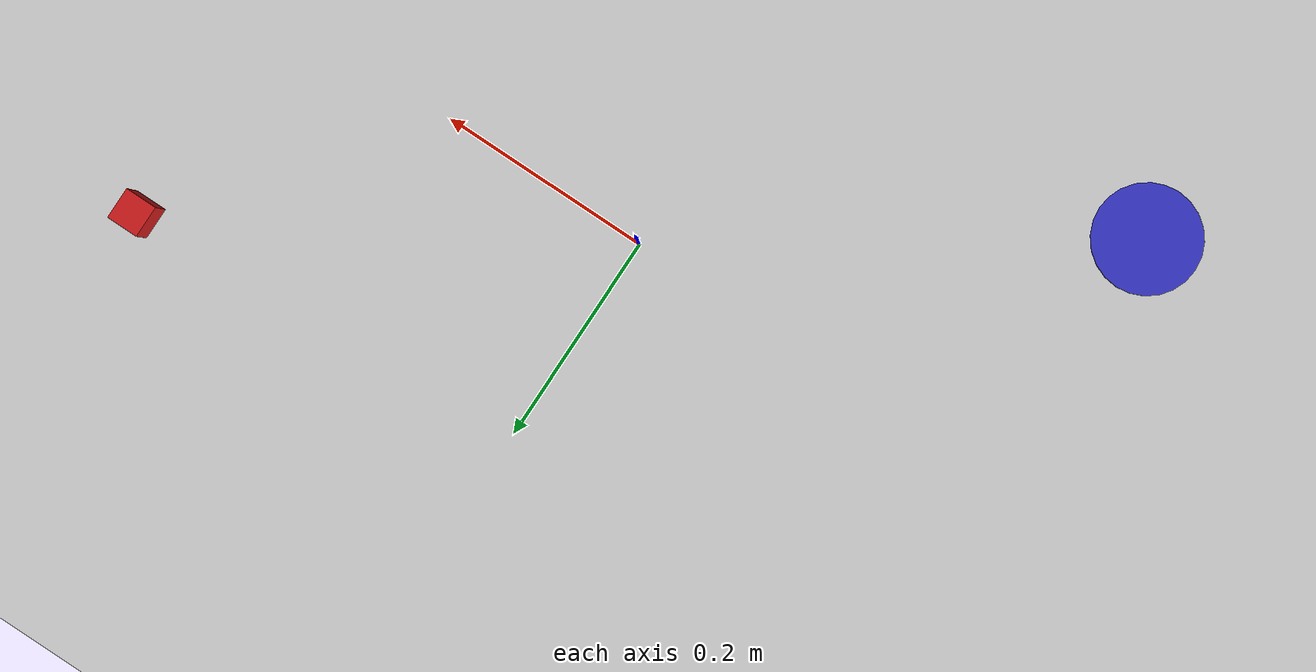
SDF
<?xml version="1.0" ?>
<sdf version="1.6">
  <world name="scara_world">

    <plugin name="gazebo_ros_state" filename="libgazebo_ros_state.so"/>
    <plugin name="scara_grasp" filename="libscara_grasp_plugin.so"/>

    <gui fullscreen="0">
      <camera name="scara_camera">
        <pose>1.3 -1.3 1.1 0 0.45 2.356</pose>
        <view_controller>orbit</view_controller>
      </camera>
    </gui>

    <include>
      <uri>model://sun</uri>
    </include>

    <include>
      <uri>model://ground_plane</uri>
    </include>

    <!-- Objeto para pegar: cubo vermelho -->
    <model name="caixa_a">
      <static>false</static>
      <pose>0.38 0.22 0.015 0 0 0</pose>
      <link name="link">
        <collision name="collision">
          <geometry>
            <box><size>0.03 0.03 0.03</size></box>
          </geometry>
        </collision>
        <visual name="visual">
          <geometry>
            <box><size>0.03 0.03 0.03</size></box>
          </geometry>
          <material>
            <ambient>0.8 0.1 0.1 1</ambient>
            <diffuse>0.8 0.1 0.1 1</diffuse>
            <specular>0.1 0.1 0.1 1</specular>
          </material>
        </visual>
        <inertial>
          <mass>0.05</mass>
          <inertia>
            <ixx>0.000001</ixx><ixy>0</ixy><ixz>0</ixz>
            <iyy>0.000001</iyy><iyz>0</iyz>
            <izz>0.000001</izz>
          </inertia>
        </inertial>
      </link>
    </model>

    <!-- Zona de entrega: disco azul no chao -->
    <model name="zona_entrega">
      <static>true</static>
      <pose>-0.37 -0.25 0.002 0 0 0</pose>
      <link name="link">
        <visual name="visual">
          <geometry>
            <cylinder><radius>0.05</radius><length>0.004</length></cylinder>
          </geometry>
          <material>
            <ambient>0.1 0.1 0.8 0.8</ambient>
            <diffuse>0.1 0.1 0.8 0.8</diffuse>
          </material>
        </visual>
        <collision name="collision">
          <geometry>
            <cylinder><radius>0.05</radius><length>0.004</length></cylinder>
          </geometry>
        </collision>
      </link>
    </model>

  </world>
</sdf>
